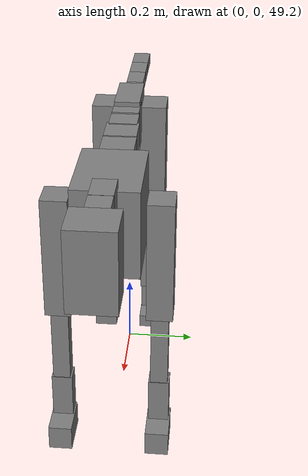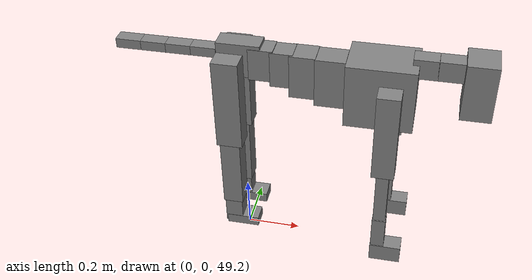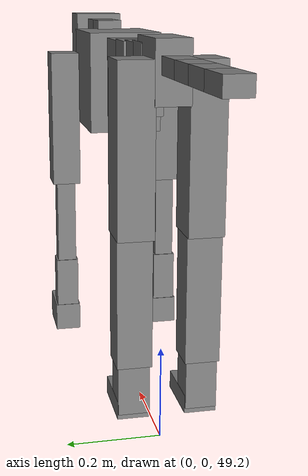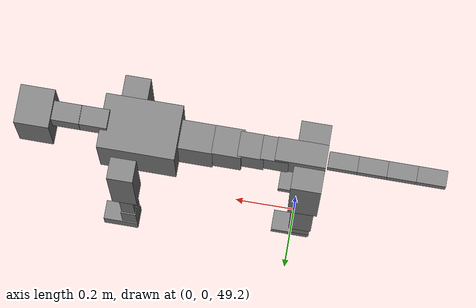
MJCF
<mujoco model="dog">

    <default>
        <joint armature="0.02" stiffness="1" damping="0.2" limited="true"/>
        <geom condim="3" friction="1 0.05 0.05" margin="0.01"/>
        <motor ctrllimited="true" ctrlrange="-1.0 1.0" forcelimited="true" gear="50"/>
    </default>

    <compiler inertiafromgeom="true" angle="radian"/>

    <option timestep="0.016" iterations="50" tolerance="1e-10" solver="Newton" jacobian="dense" cone="pyramidal"/>

    <size nconmax="20000" njmax="60000" nstack="5000000"/>
    <visual>
        <map force="0.1" zfar="30"/>
        <rgba haze="0.15 0.25 0.35 1"/>
        <quality shadowsize="2048"/>
        <global offwidth="800" offheight="800"/>
    </visual>

    <asset>
        <texture type="skybox" builtin="gradient" rgb1="0.3 0.5 0.7" rgb2="0 0 0" width="512" height="512"/>
        <texture name="texplane" type="2d" builtin="checker" rgb1=".2 .3 .4" rgb2=".1 0.15 0.2" width="512" height="512"
                 mark="cross" markrgb=".8 .8 .8"/>
        <texture name="texgeom" type="cube" builtin="flat" mark="cross" width="127" height="1278" rgb1="0.8 0.6 0.4"
                 rgb2="0.8 0.6 0.4" markrgb="1 1 1" random="0.01"/>

        <material name="matplane" reflectance="0.3" texture="texplane" texrepeat="1 1" texuniform="true"/>
        <material name="matgeom" texture="texgeom" texuniform="true" rgba="0.8 0.6 .4 1"/>
    </asset>

    <worldbody>
        <geom name="floor" pos="0 0 0" size="0 0 .25" type="plane" material="matplane" condim="3"/>

        <light directional="false" diffuse=".2 .2 .2" specular="0 0 0" pos="0 0 5" dir="0 0 -1" castshadow="false"/>
        <light mode="targetbodycom" target="torso" directional="false" diffuse=".8 .8 .8" specular="0.3 0.3 0.3"
               pos="0 0 4.0" dir="0 0 -1"/>

        <body name="root" pos="0 0 50">
            <freejoint name="root_1"/>
            <geom type="box" pos="0 0 -0.02" size="0.0774  0.0358  0.063" density="2030"/>

            <body name="spine1" pos="0.054 0 0">
                <joint name="spine1_y" axis="0 1 0" range="0 0.7" limited="true"/>
                <geom type="box" pos="0.02375 0 -0.03" size="0.04375  0.0375  0.05985" density="2030"/>

                <body name="spine2" pos="0.0612 0 0">
                    <joint name="spine2_y" axis="0 1 0" range="-0.15 0.15" limited="true"/>
                    <geom type="box" pos="0.03555  0  -0.04" size="0.04055  0.039  0.06615" density="2030"/>

                    <body name="spine3" pos="0.0730 0 0">
                        <joint name="spine3_y" axis="0 1 0" range="-0.15 0.15" limited="true"/>
                        <geom type="box" pos="0.03555  0  -0.057" size="0.04555  0.0445  0.081" density="2030"/>

                        <body name="spine4" pos="0.0780 0 0">
                            <joint name="spine4_y" axis="0 1 0" range="-0.15 0.15" limited="true"/>
                            <geom type="box" pos="0.05265  0  -0.07" size="0.05265  0.045  0.09135" density="2030"/>

                            <body name="torso" pos="0.1082 0 0">
                                <joint name="torso_y" axis="0 1 0" range="-0.15 0.15" limited="true"/>
                                <geom type="box" pos="0.11925  0  -0.085" size="0.11925  0.085  0.11745"
                                      density="2030"/>

                                <body name="neck1" pos="0.2160  0   0.0180">
                                    <joint name="neck1_y" axis="0 1 0" range="-1.2  -1" limited="true"/>
                                    <geom type="box" pos="0.0423  0  0" size="0.0423  0.03  0.036" density="2325"/>

                                    <body name="neck2" pos="0.0853  0  0">
                                        <joint name="neck2_y" axis="0 1 0" range="0.1  0" limited="true"/>
                                        <geom type="box" pos="0.0423  0  0" size="0.0423  0.03  0.036" density="2325"/>

                                        <body name="head" pos="0.0853  0  0">
                                            <joint name="head_y" axis="0 1 0" range="-0.3  -0.2" limited="true"/>
                                            <geom type="box" pos="0.0531  0  -0.055" size="0.0531  0.06  0.1044"
                                                  density="4030"/>

                                        </body>
                                    </body>
                                </body>

                                <body name="front_shoulder" pos="0.156  0   -0.0480">
                                    <joint name="front_shoulder_y" axis="0 1 0" range="-1 1.5" limited="true"/>
                                    <geom type="box" pos="0 0.13 -0.1382" size="0.0400  0.0342  0.1649" density="1158"/>
                                    <geom type="box" pos="0 -0.13 -0.1382" size="0.0400  0.0342  0.1649"
                                          density="1158"/>

                                    <body name="front_elbow" pos="0  0  -0.2765">
                                        <joint name="front_elbow_y" axis="0 1 0" range="-2 0" limited="true"/>
                                        <geom type="box" pos="0 0.13 -0.1241" size="0.0224  0.0229  0.1241"
                                              density="1081"/>
                                        <geom type="box" pos="0 -0.13 -0.1241" size="0.0224  0.0229  0.1241"
                                              density="1081"/>

                                        <body name="front_wrist" pos="0  0  -0.2482">
                                            <joint name="front_wrist_y" axis="0 1 0" range="-0.2 0" limited="true"/>
                                            <geom type="box" pos="0 0.13 -0.0625" size="0.0246  0.0273  0.0757"
                                                  density="1664"/>
                                            <geom type="box" pos="0 -0.13 -0.0625" size="0.0246  0.0273  0.0757"
                                                  density="1664"/>

                                            <body name="front_finger_end" pos="0  0  -0.1251">
                                                <joint name="front_finger_y" axis="0 1 0" range="-0.4 1"
                                                       limited="true"/>
                                                <geom type="box" pos="0.0310  0.13  -0.0191"
                                                      size="0.0568  0.0310  0.0341" density="1515"/>
                                                <geom type="box" pos="0.0310  -0.13  -0.0191"
                                                      size="0.0568  0.0310  0.0341" density="1515"/>

                                            </body>

                                        </body>
                                    </body>
                                </body>

                            </body>
                        </body>
                    </body>
                </body>
            </body>

            <body name="back_hip" pos="-0.03 0 -0.018">
                <joint name="back_hip_y" axis="0 1 0" range="-1.5 0.3" limited="true"/>
                <geom type="box" pos="0 0.07 -0.1499" size="0.0469  0.0368  0.1727" density="1154"/>
                <geom type="box" pos="0 -0.07 -0.1499" size="0.0469  0.0368  0.1727" density="1154"/>

                <body name="back_knee" pos="0  0  -0.2998">
                    <joint name="back_knee_y" axis="0 1 0" range="0 2.8" limited="true"/>
                    <geom type="box" pos="0 0.07 -0.1368" size="0.0364  0.0358  0.1523" density="1227"/>
                    <geom type="box" pos="0 -0.07 -0.1368" size="0.0364  0.0358  0.1523" density="1227"/>

                    <body name="back_ankle" pos="0  0  -0.2736">
                        <joint name="back_ankle_y" axis="0 1 0" range="-2.2 0" limited="true"/>
                        <geom type="box" pos="0 0.07 -0.0530" size="0.0323  0.0323  0.0643" density="1284"/>
                        <geom type="box" pos="0 -0.07 -0.0530" size="0.0323  0.0323  0.0643" density="1284"/>

                        <body name="back_toe_end" pos="0  0  -0.1060">
                            <joint name="back_toe_y" axis="0 1 0" range="-0.4 1" limited="true"/>
                            <geom type="box" pos="0.0330  0.07  -0.0040" size="0.0605  0.0330  0.0190" density="1515"/>
                            <geom type="box" pos="0.0330  -0.07  -0.0040" size="0.0605  0.0330  0.0190" density="1515"/>

                        </body>
                    </body>
                </body>
            </body>

            <body name="tail1" pos="-0.074 0 -0.006">
                <joint name="tail1_y" axis="0 1 0" range="-0.2 0.2" limited="true"/>
                <geom type="box" pos="-0.0536  0  0" size="0.045  0.025  0.0175" density="1587"/>

                <body name="tail2" pos="-0.09 0 0">
                    <joint name="tail2_y" axis="0 1 0" range="-0.2 0.2" limited="true"/>
                    <geom type="box" pos="-0.0536  0  0" size="0.045  0.025  0.0175" density="1587"/>

                    <body name="tail3" pos="-0.09 0 0">
                        <joint name="tail3_y" axis="0 1 0" range="-0.2 0.2" limited="true"/>
                        <geom type="box" pos="-0.0536  0  0" size="0.045  0.025  0.0175" density="1587"/>

                        <body name="tail4" pos="-0.09 0 0">
                            <joint name="tail4_y" axis="0 1 0" range="-0.2 0.2" limited="true"/>
                            <geom type="box" pos="-0.0536  0  0" size="0.045  0.025  0.0175" density="1587"/>

                        </body>
                    </body>
                </body>
            </body>
        </body>
    </worldbody>

    <actuator>
        <motor joint="spine1_y" forcerange="-150 150     "/>
        <motor joint="spine2_y" forcerange="-150 150     "/>
        <motor joint="spine3_y" forcerange="-150 150     "/>
        <motor joint="spine4_y" forcerange="-150 150     "/>
        <motor joint="torso_y" forcerange="-150 150     "/>
        <motor joint="neck1_y" forcerange="-100 100       "/>
        <motor joint="neck2_y" forcerange="-100 100       "/>
        <motor joint="head_y" forcerange="-150 150       "/>
        <motor joint="front_shoulder_y" forcerange="-157.62 170.44"/>
        <motor joint="front_elbow_y" forcerange="-150.53 116.18"/>
        <motor joint="front_wrist_y" forcerange="-96.79 121.61"/>
        <motor joint="front_finger_y" forcerange="-93.78 31.60"/>
        <motor joint="back_hip_y" forcerange="-391.26 299.45"/>
        <motor joint="back_knee_y" forcerange="-348.83 372.48"/>
        <motor joint="back_angle_y" forcerange="-199.67 216.40"/>
        <motor joint="back_toe_y" forcerange="-50.91 133.05"/>
        <motor joint="tail1_y" forcerange="-50 50     "/>
        <motor joint="tail2_y" forcerange="-50 50     "/>
        <motor joint="tail3_y" forcerange="-50 50     "/>
        <motor joint="tail4_y" forcerange="-50 50     "/>
    </actuator>
</mujoco>
